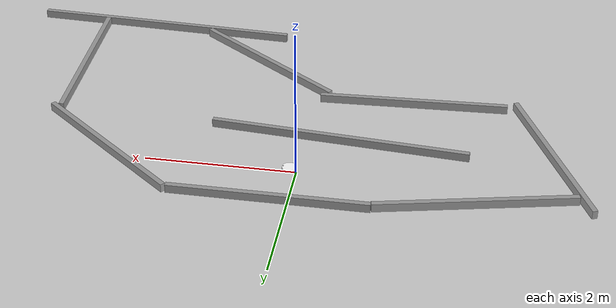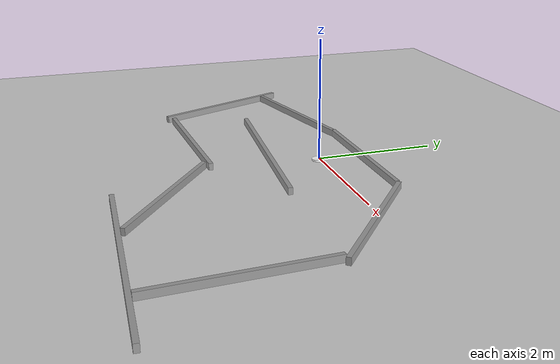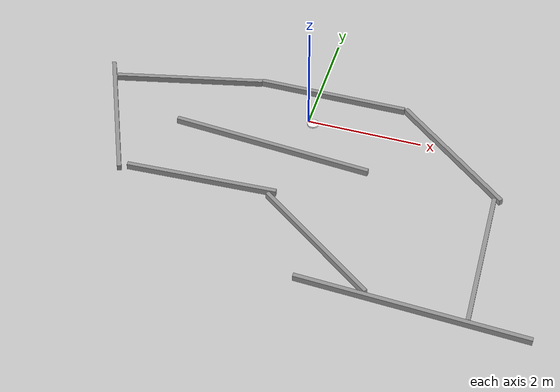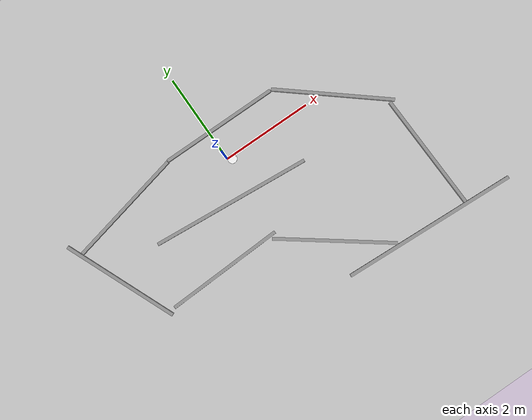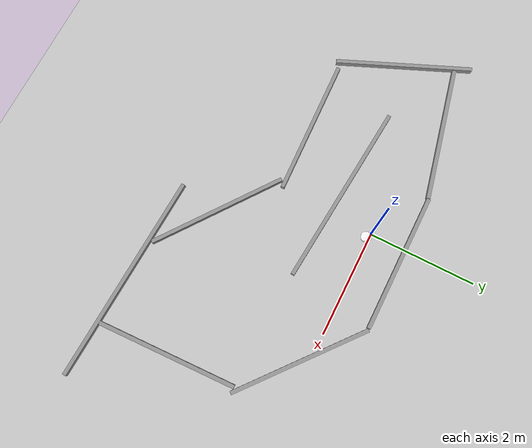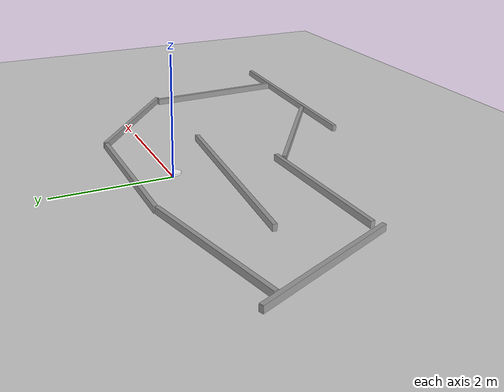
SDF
<sdf version="1.7">
 <world name="default">
  <light name="sun" type="directional">
   <pose>0 0 10 0 -0 0</pose>
   <diffuse>0.8 0.8 0.8 1</diffuse>
   <specular>0.2 0.2 0.2 1</specular>
   <attenuation>
    <range>1000</range>
    <constant>0.9</constant>
    <linear>0.01</linear>
    <quadratic>0.001</quadratic>
   </attenuation>
   <direction>-0.5 0.1 -0.9</direction>
   <spot><inner_angle>0</inner_angle><outer_angle>0</outer_angle><falloff>0</falloff></spot>
  </light>
  <model name="ground_plane">
   <static>1</static>
   <link name="link">
    <collision name="collision">
     <geometry><plane><normal>0 0 1</normal><size>100 100</size></plane></geometry>
     <surface>
      <contact><collide_bitmask>65535</collide_bitmask></contact>
      <friction><ode><mu>100</mu><mu2>50</mu2></ode></friction>
     </surface>
    </collision>
    <visual name="visual">
     <cast_shadows>0</cast_shadows>
     <geometry><plane><normal>0 0 1</normal><size>100 100</size></plane></geometry>
     <material>
      <script><uri>file://media/materials/scripts/gazebo.material</uri><name>Gazebo/Grey</name></script>
     </material>
    </visual>
   </link>
  </model>
  <gravity>0 0 -9.8</gravity>
  <magnetic_field>6e-06 2.3e-05 -4.2e-05</magnetic_field>
  <atmosphere type="adiabatic"/>
  <physics type="ode">
   <max_step_size>0.001</max_step_size>
   <real_time_factor>1</real_time_factor>
   <real_time_update_rate>1000</real_time_update_rate>
  </physics>
  <scene><ambient>0.4 0.4 0.4 1</ambient><background>0.7 0.7 0.7 1</background><shadows>1</shadows></scene>
  <spherical_coordinates>
   <surface_model>EARTH_WGS84</surface_model>
   <latitude_deg>0</latitude_deg>
   <longitude_deg>0</longitude_deg>
   <elevation>0</elevation>
   <heading_deg>0</heading_deg>
  </spherical_coordinates>
  <model name="unit_box_clone">
   <pose>2.58219 -0.152923 0.056512 3e-06 -0.000166 -0.690484</pose>
   <link name="link">
    <inertial>
     <mass>1</mass>
     <inertia>
      <ixx>0.166667</ixx>
      <ixy>0</ixy>
      <ixz>0</ixz>
      <iyy>0.166667</iyy>
      <iyz>0</iyz>
      <izz>0.166667</izz>
     </inertia>
    </inertial>
    <collision name="collision"><geometry><box><size>2.59763 0.071532 0.113455</size></box></geometry></collision>
    <visual name="visual">
     <geometry><box><size>2.59763 0.071532 0.113455</size></box></geometry>
     <material>
      <script><name>Gazebo/Grey</name><uri>file://media/materials/scripts/gazebo.material</uri></script>
     </material>
    </visual>
   </link>
  </model>
  <model name="unit_box_clone_1">
   <pose>-0.442978 -0.796896 0.056075 -5.6e-05 0.000374 -0.084044</pose>
   <link name="link">
    <inertial>
     <mass>1</mass>
     <inertia>
      <ixx>0.166667</ixx>
      <ixy>0</ixy>
      <ixz>0</ixz>
      <iyy>0.166667</iyy>
      <iyz>0</iyz>
      <izz>0.166667</izz>
     </inertia>
    </inertial>
    <collision name="collision"><geometry><box><size>3.50353 0.071532 0.113455</size></box></geometry></collision>
    <visual name="visual">
     <geometry><box><size>3.50353 0.071532 0.113455</size></box></geometry>
     <material>
      <script><name>Gazebo/Grey</name><uri>file://media/materials/scripts/gazebo.material</uri></script>
     </material>
    </visual>
   </link>
  </model>
  <model name="unit_box_clone_2">
   <pose>3.51652 -2.26872 0.056587 -6e-05 -0.000109 -1.5336</pose>
   <link name="link">
    <inertial>
     <mass>1</mass>
     <inertia>
      <ixx>0.166667</ixx>
      <ixy>0</ixy>
      <ixz>0</ixz>
      <iyy>0.166667</iyy>
      <iyz>0</iyz>
      <izz>0.166667</izz>
     </inertia>
    </inertial>
    <collision name="collision"><geometry><box><size>2.59763 0.071532 0.113455</size></box></geometry></collision>
    <visual name="visual">
     <geometry><box><size>2.59763 0.071532 0.113455</size></box></geometry>
     <material>
      <script><name>Gazebo/Grey</name><uri>file://media/materials/scripts/gazebo.material</uri></script>
     </material>
    </visual>
   </link>
  </model>
  <model name="unit_box_clone_0_clone">
   <pose>0.866984 -2.68097 0.056728 -4e-06 -0 -0.641137</pose>
   <link name="link">
    <inertial>
     <mass>1</mass>
     <inertia>
      <ixx>0.166667</ixx>
      <ixy>0</ixy>
      <ixz>0</ixz>
      <iyy>0.166667</iyy>
      <iyz>0</iyz>
      <izz>0.166667</izz>
     </inertia>
    </inertial>
    <collision name="collision"><geometry><box><size>2.59763 0.071532 0.113455</size></box></geometry></collision>
    <visual name="visual">
     <geometry><box><size>2.59763 0.071532 0.113455</size></box></geometry>
     <material>
      <script><name>Gazebo/Grey</name><uri>file://media/materials/scripts/gazebo.material</uri></script>
     </material>
    </visual>
   </link>
  </model>
  <model name="unit_box_clone_1_clone">
   <pose>-1.34519 -1.87284 0.056684 6.7e-05 3.5e-05 0.039291</pose>
   <link name="link">
    <inertial>
     <mass>1</mass>
     <inertia>
      <ixx>0.166667</ixx>
      <ixy>0</ixy>
      <ixz>0</ixz>
      <iyy>0.166667</iyy>
      <iyz>0</iyz>
      <izz>0.166667</izz>
     </inertia>
    </inertial>
    <collision name="collision"><geometry><box><size>2.59763 0.071532 0.113455</size></box></geometry></collision>
    <visual name="visual">
     <geometry><box><size>2.59763 0.071532 0.113455</size></box></geometry>
     <material>
      <script><name>Gazebo/Grey</name><uri>file://media/materials/scripts/gazebo.material</uri></script>
     </material>
    </visual>
   </link>
  </model>
  <model name="unit_box_clone_2_clone">
   <pose>2.65889 -3.56079 0.056676 -0.0003 3.2e-05 -0.049749</pose>
   <link name="link">
    <inertial>
     <mass>1</mass>
     <inertia>
      <ixx>0.166667</ixx>
      <ixy>0</ixy>
      <ixz>0</ixz>
      <iyy>0.166667</iyy>
      <iyz>0</iyz>
      <izz>0.166667</izz>
     </inertia>
    </inertial>
    <collision name="collision"><geometry><box><size>3.87721 0.071532 0.113455</size></box></geometry></collision>
    <visual name="visual">
     <geometry><box><size>3.87721 0.071532 0.113455</size></box></geometry>
     <material>
      <script><name>Gazebo/Grey</name><uri>file://media/materials/scripts/gazebo.material</uri></script>
     </material>
    </visual>
   </link>
  </model>
  <model name="unit_box_clone_3">
   <pose>-2.31719 0.365413 0.056512 3e-06 0.000166 0.219483</pose>
   <link name="link">
    <inertial>
     <mass>1</mass>
     <inertia>
      <ixx>0.166667</ixx>
      <ixy>0</ixy>
      <ixz>0</ixz>
      <iyy>0.166667</iyy>
      <iyz>0</iyz>
      <izz>0.166667</izz>
     </inertia>
    </inertial>
    <collision name="collision"><geometry><box><size>2.59763 0.071532 0.113455</size></box></geometry></collision>
    <visual name="visual">
     <geometry><box><size>2.59763 0.071532 0.113455</size></box></geometry>
     <material>
      <script><name>Gazebo/Grey</name><uri>file://media/materials/scripts/gazebo.material</uri></script>
     </material>
    </visual>
   </link>
  </model>
  <model name="unit_box_clone_3_clone">
   <pose>-3.2593 -0.827749 0.056512 3e-06 0.000166 1.96826</pose>
   <link name="link">
    <inertial>
     <mass>1</mass>
     <inertia>
      <ixx>0.166667</ixx>
      <ixy>0</ixy>
      <ixz>0</ixz>
      <iyy>0.166667</iyy>
      <iyz>0</iyz>
      <izz>0.166667</izz>
     </inertia>
    </inertial>
    <collision name="collision"><geometry><box><size>2.59763 0.071532 0.113455</size></box></geometry></collision>
    <visual name="visual">
     <geometry><box><size>2.59763 0.071532 0.113455</size></box></geometry>
     <material>
      <script><name>Gazebo/Grey</name><uri>file://media/materials/scripts/gazebo.material</uri></script>
     </material>
    </visual>
   </link>
  </model>
  <model name="unit_box_clone_1_clone_0">
   <pose>0.253779 0.662949 0.056597 6.6e-05 -0.000102 -0.000933</pose>
   <link name="link">
    <inertial>
     <mass>1</mass>
     <inertia>
      <ixx>0.166667</ixx>
      <ixy>0</ixy>
      <ixz>0</ixz>
      <iyy>0.166667</iyy>
      <iyz>0</iyz>
      <izz>0.166667</izz>
     </inertia>
    </inertial>
    <collision name="collision"><geometry><box><size>2.59763 0.071532 0.113455</size></box></geometry></collision>
    <visual name="visual">
     <geometry><box><size>2.59763 0.071532 0.113455</size></box></geometry>
     <material>
      <script><name>Gazebo/Grey</name><uri>file://media/materials/scripts/gazebo.material</uri></script>
     </material>
    </visual>
   </link>
  </model>
  <model name="my_robot">
   <static>0</static>
   <joint name="left_wheel_joint" type="revolute">
    <child>left_wheel</child>
    <parent>chassis</parent>
    <axis>
     <xyz expressed_in="__model__">0 1 0</xyz>
     <limit><lower>-1e+16</lower><upper>1e+16</upper></limit>
     <dynamics><spring_reference>0</spring_reference><spring_stiffness>0</spring_stiffness></dynamics>
    </axis>
   </joint>
   <joint name="right_wheel_joint" type="revolute">
    <child>right_wheel</child>
    <parent>chassis</parent>
    <axis>
     <xyz expressed_in="__model__">0 1 0</xyz>
     <limit><lower>-1e+16</lower><upper>1e+16</upper></limit>
     <dynamics><spring_reference>0</spring_reference><spring_stiffness>0</spring_stiffness></dynamics>
    </axis>
   </joint>
   <joint name="laser_joint" type="fixed"><child>laser</child><parent>chassis</parent></joint>
   <link name="laser">
    <pose>0.085 0 0.03 0 -0 0</pose>
    <collision name="collision"><geometry><box><size>0.01 0.01 0.01</size></box></geometry></collision>
    <visual name="visual">
     <geometry><box><size>0.01 0.01 0.01</size></box></geometry>
     <material>
      <ambient>1 1 1 1</ambient>
      <diffuse>1 1 1 1</diffuse>
      <specular>0 0 0 0</specular>
      <emissive>0 0 0 1</emissive>
     </material>
    </visual>
    <sensor name="head_hokuyo_sensor" type="ray">
     <visualize>1</visualize>
     <update_rate>40</update_rate>
     <ray>
      <scan>
       <horizontal>
        <samples>3</samples>
        <resolution>1</resolution>
        <min_angle>-1</min_angle>
        <max_angle>1</max_angle>
       </horizontal>
       <vertical><samples>1</samples><min_angle>0</min_angle><max_angle>0</max_angle></vertical>
      </scan>
      <range><min>0.01</min><max>100</max><resolution>0.01</resolution></range>
     </ray>
     <plugin name="gazebo_ros_head_hokuyo_controller" filename="libgazebo_ros_laser.so">
      <topicName>/laserSensor</topicName>
      <frameName>laser</frameName>
     </plugin>
    </sensor>
    <inertial>
     <inertia><ixx>1</ixx><ixy>0</ixy><ixz>0</ixz><iyy>1</iyy><iyz>0</iyz><izz>1</izz></inertia>
     <mass>1</mass>
    </inertial>
   </link>
   <link name="chassis">
    <inertial>
     <mass>50</mass>
     <inertia><ixx>1</ixx><ixy>0</ixy><ixz>0</ixz><iyy>1</iyy><iyz>0</iyz><izz>1</izz></inertia>
    </inertial>
    <pose>0 0 0.01 0 -0 0</pose>
    <collision name="collision">
     <geometry><cylinder><radius>0.1</radius><length>0.03</length></cylinder></geometry>
    </collision>
    <visual name="visual">
     <geometry><cylinder><radius>0.1</radius><length>0.03</length></cylinder></geometry>
     <material><ambient>1 1 1 1</ambient><diffuse>1 1 1 1</diffuse></material>
    </visual>
    <collision name="caster_front_collision">
     <pose>-0.06 0 -0.02 0 -0 0</pose>
     <geometry><sphere><radius>0.01</radius></sphere></geometry>
     <surface><friction><ode><mu>0</mu><mu2>0</mu2><slip1>1</slip1><slip2>1</slip2></ode></friction></surface>
    </collision>
    <visual name="caster_front_visual">
     <pose>-0.06 0 -0.02 0 -0 0</pose>
     <geometry><sphere><radius>0.01</radius></sphere></geometry>
    </visual>
    <collision name="caster_back_collision">
     <pose>0.06 0 -0.02 0 -0 0</pose>
     <geometry><sphere><radius>0.01</radius></sphere></geometry>
     <surface><friction><ode><mu>0</mu><mu2>0</mu2><slip1>1</slip1><slip2>1</slip2></ode></friction></surface>
    </collision>
    <visual name="caster_back_visual">
     <pose>0.06 0 -0.02 0 -0 0</pose>
     <geometry><sphere><radius>0.01</radius></sphere></geometry>
    </visual>
   </link>
   <link name="left_wheel">
    <pose>0 0.075 0 -0 1.5707 1.5707</pose>
    <collision name="collision">
     <geometry><cylinder><radius>0.02</radius><length>0.02</length></cylinder></geometry>
    </collision>
    <visual name="visual">
     <geometry><cylinder><radius>0.02</radius><length>0.02</length></cylinder></geometry>
     <material>
      <ambient>1 1 1 1</ambient>
      <diffuse>1 1 1 1</diffuse>
      <specular>0 0 0 0</specular>
      <emissive>0 0 0 1</emissive>
     </material>
    </visual>
    <inertial>
     <inertia><ixx>1</ixx><ixy>0</ixy><ixz>0</ixz><iyy>1</iyy><iyz>0</iyz><izz>1</izz></inertia>
     <mass>1</mass>
    </inertial>
   </link>
   <link name="right_wheel">
    <pose>0 -0.075 0 -0 1.5707 1.5707</pose>
    <collision name="collision">
     <geometry><cylinder><radius>0.02</radius><length>0.02</length></cylinder></geometry>
    </collision>
    <visual name="visual">
     <geometry><cylinder><radius>0.02</radius><length>0.02</length></cylinder></geometry>
     <material>
      <ambient>1 1 1 1</ambient>
      <diffuse>1 1 1 1</diffuse>
      <specular>0 0 0 0</specular>
      <emissive>0 0 0 1</emissive>
     </material>
    </visual>
    <inertial>
     <inertia><ixx>1</ixx><ixy>0</ixy><ixz>0</ixz><iyy>1</iyy><iyz>0</iyz><izz>1</izz></inertia>
     <mass>1</mass>
    </inertial>
   </link>
   <plugin name="differential_drive_controller" filename="libgazebo_ros_diff_drive.so">
    <robotNamespace>my_robot</robotNamespace>
    <alwaysOn>1</alwaysOn>
    <updateRate>10</updateRate>
    <legacyMode>1</legacyMode>
    <leftJoint>right_wheel_joint</leftJoint>
    <rightJoint>left_wheel_joint</rightJoint>
    <torque>20</torque>
    <commandTopic>cmd_vel</commandTopic>
    <robotBaseFrame>chassis</robotBaseFrame>
    <odometrySource>world</odometrySource>
   </plugin>
   <pose>0.092038 -0.061153 0.02 -2e-06 -0 -0.009571</pose>
  </model>
 </world>
</sdf>
